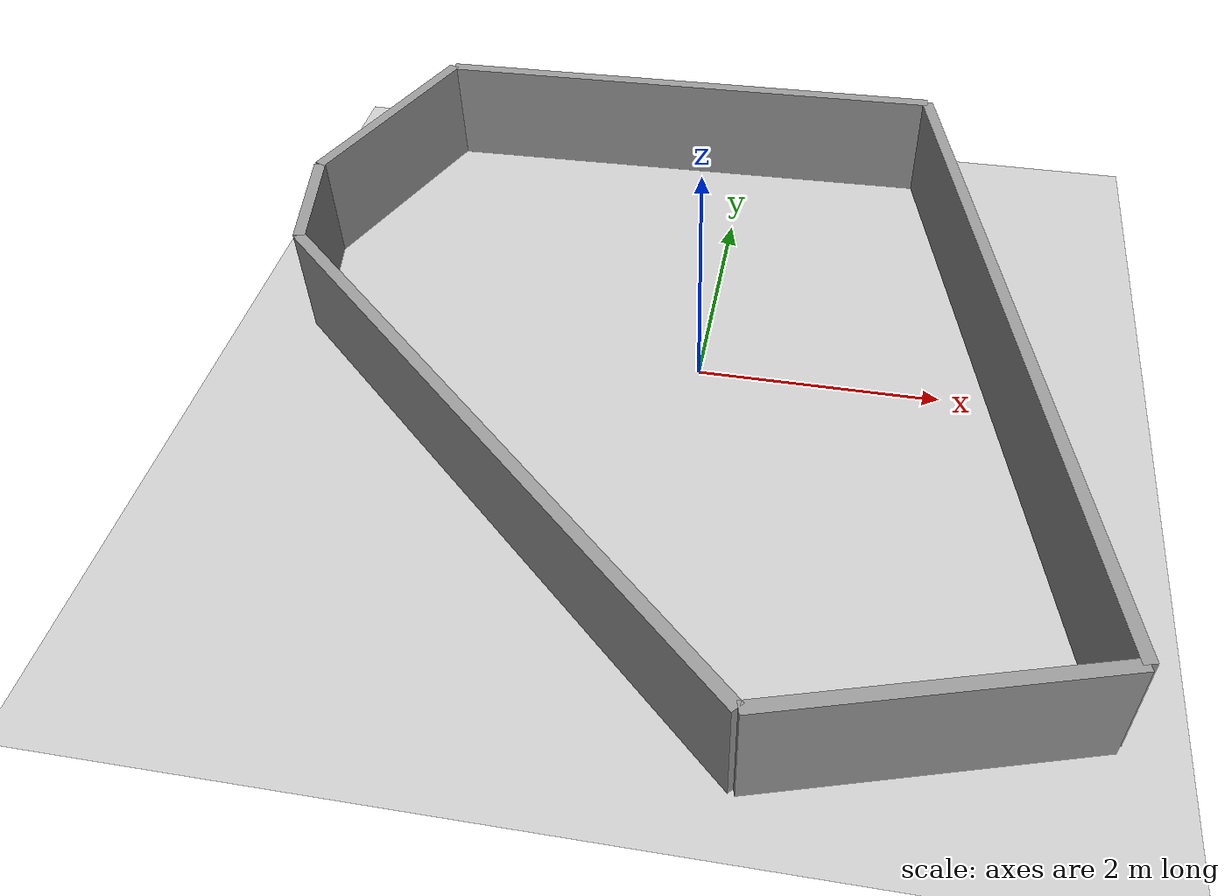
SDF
<sdf version='1.4'>
  <world name='default'>
    <light name='sun' type='directional'>
      <cast_shadows>1</cast_shadows>
      <pose>0 0 10 0 -0 0</pose>
      <diffuse>0.8 0.8 0.8 1</diffuse>
      <specular>0.2 0.2 0.2 1</specular>
      <attenuation>
        <range>1000</range>
        <constant>0.9</constant>
        <linear>0.01</linear>
        <quadratic>0.001</quadratic>
      </attenuation>
      <direction>-0.5 0.1 -0.9</direction>
    </light>
    <model name='ground_plane'>
      <static>1</static>
      <link name='link'>
        <collision name='collision'>
          <geometry>
            <plane>
              <normal>0 0 1</normal>
              <size>100 100</size>
            </plane>
          </geometry>
          <surface>
            <friction>
              <ode>
                <mu>100</mu>
                <mu2>50</mu2>
              </ode>
            </friction>
            <bounce/>
            <contact>
              <ode/>
            </contact>
          </surface>
          <max_contacts>10</max_contacts>
        </collision>
        <visual name='visual'>
          <cast_shadows>0</cast_shadows>
          <geometry>
            <plane>
              <normal>0 0 1</normal>
              <size>100 100</size>
            </plane>
          </geometry>
          <material>
            <script>
              <uri>file://media/materials/scripts/gazebo.material</uri>
              <name>Gazebo/Grey</name>
            </script>
          </material>
        </visual>
        <velocity_decay>
          <linear>0</linear>
          <angular>0</angular>
        </velocity_decay>
        <self_collide>0</self_collide>
        <kinematic>0</kinematic>
        <gravity>1</gravity>
      </link>
    </model>
    <physics type='ode'>
      <max_step_size>0.001</max_step_size>
      <real_time_factor>1</real_time_factor>
      <real_time_update_rate>1000</real_time_update_rate>
      <gravity>0 0 -9.8</gravity>
    </physics>
    <scene>
      <ambient>0.4 0.4 0.4 1</ambient>
      <background>0.7 0.7 0.7 1</background>
      <shadows>1</shadows>
    </scene>
    <spherical_coordinates>
      <surface_model>EARTH_WGS84</surface_model>
      <latitude_deg>0</latitude_deg>
      <longitude_deg>0</longitude_deg>
      <elevation>0</elevation>
      <heading_deg>0</heading_deg>
    </spherical_coordinates>
<model name="wall_1">
<pose>
-1.300000 -1.800000 0.450000 0 0 2.406153 </pose>
 <link name="link_1">
<inertial>
<mass>1</mass>
 <inertia>
<izz>1</izz>
 <ixx>1</ixx>
 <iyz>0</iyz>
 <ixz>0</ixz>
 <ixy>0</ixy>
 <iyy>1</iyy>
 </inertia>
 </inertial>
 <collision name="collision">
<geometry>
<box>
<size>
5.663921 0.100000 1 </size>
 </box>
 </geometry>
 <max_contacts>10</max_contacts>
 </collision>
 <visual name="visual">
<geometry>
<box>
<size>
5.663921 0.100000 1 </size>
 </box>
 </geometry>
 <material>
<script>
<uri>file://media/materials/scripts/gazebo.material</uri>
 <name>Gazebo/Grey</name>
 </script>
 </material>
 </visual>
 </link>
 <static>1</static>
 </model>

<model name="wall_2">
<pose>
-3.500000 0.600000 0.450000 0 0 1.768192 </pose>
 <link name="link_2">
<inertial>
<mass>1</mass>
 <inertia>
<izz>1</izz>
 <ixx>1</ixx>
 <iyz>0</iyz>
 <ixz>0</ixz>
 <ixy>0</ixy>
 <iyy>1</iyy>
 </inertia>
 </inertial>
 <collision name="collision">
<geometry>
<box>
<size>
1.019804 0.100000 1 </size>
 </box>
 </geometry>
 <max_contacts>10</max_contacts>
 </collision>
 <visual name="visual">
<geometry>
<box>
<size>
1.019804 0.100000 1 </size>
 </box>
 </geometry>
 <material>
<script>
<uri>file://media/materials/scripts/gazebo.material</uri>
 <name>Gazebo/Grey</name>
 </script>
 </material>
 </visual>
 </link>
 <static>1</static>
 </model>

<model name="wall_3">
<pose>
-3.250000 2.000000 0.450000 0 0 1.199905 </pose>
 <link name="link_3">
<inertial>
<mass>1</mass>
 <inertia>
<izz>1</izz>
 <ixx>1</ixx>
 <iyz>0</iyz>
 <ixz>0</ixz>
 <ixy>0</ixy>
 <iyy>1</iyy>
 </inertia>
 </inertial>
 <collision name="collision">
<geometry>
<box>
<size>
1.931321 0.100000 1 </size>
 </box>
 </geometry>
 <max_contacts>10</max_contacts>
 </collision>
 <visual name="visual">
<geometry>
<box>
<size>
1.931321 0.100000 1 </size>
 </box>
 </geometry>
 <material>
<script>
<uri>file://media/materials/scripts/gazebo.material</uri>
 <name>Gazebo/Grey</name>
 </script>
 </material>
 </visual>
 </link>
 <static>1</static>
 </model>

<model name="wall_4">
<pose>
-0.600000 2.950000 0.450000 0 0 0.021736 </pose>
 <link name="link_4">
<inertial>
<mass>1</mass>
 <inertia>
<izz>1</izz>
 <ixx>1</ixx>
 <iyz>0</iyz>
 <ixz>0</ixz>
 <ixy>0</ixy>
 <iyy>1</iyy>
 </inertia>
 </inertial>
 <collision name="collision">
<geometry>
<box>
<size>
4.601087 0.100000 1 </size>
 </box>
 </geometry>
 <max_contacts>10</max_contacts>
 </collision>
 <visual name="visual">
<geometry>
<box>
<size>
4.601087 0.100000 1 </size>
 </box>
 </geometry>
 <material>
<script>
<uri>file://media/materials/scripts/gazebo.material</uri>
 <name>Gazebo/Grey</name>
 </script>
 </material>
 </visual>
 </link>
 <static>1</static>
 </model>

<model name="wall_5">
<pose>
2.450000 0.000000 0.450000 0 0 -1.325818 </pose>
 <link name="link_5">
<inertial>
<mass>1</mass>
 <inertia>
<izz>1</izz>
 <ixx>1</ixx>
 <iyz>0</iyz>
 <ixz>0</ixz>
 <ixy>0</ixy>
 <iyy>1</iyy>
 </inertia>
 </inertial>
 <collision name="collision">
<geometry>
<box>
<size>
6.184658 0.100000 1 </size>
 </box>
 </geometry>
 <max_contacts>10</max_contacts>
 </collision>
 <visual name="visual">
<geometry>
<box>
<size>
6.184658 0.100000 1 </size>
 </box>
 </geometry>
 <material>
<script>
<uri>file://media/materials/scripts/gazebo.material</uri>
 <name>Gazebo/Grey</name>
 </script>
 </material>
 </visual>
 </link>
 <static>1</static>
 </model>

<model name="wall_6">
<pose>
2.000000 -3.350000 0.450000 0 0 -2.857799 </pose>
 <link name="link_6">
<inertial>
<mass>1</mass>
 <inertia>
<izz>1</izz>
 <ixx>1</ixx>
 <iyz>0</iyz>
 <ixz>0</ixz>
 <ixy>0</ixy>
 <iyy>1</iyy>
 </inertia>
 </inertial>
 <collision name="collision">
<geometry>
<box>
<size>
2.500000 0.100000 1 </size>
 </box>
 </geometry>
 <max_contacts>10</max_contacts>
 </collision>
 <visual name="visual">
<geometry>
<box>
<size>
2.500000 0.100000 1 </size>
 </box>
 </geometry>
 <material>
<script>
<uri>file://media/materials/scripts/gazebo.material</uri>
 <name>Gazebo/Grey</name>
 </script>
 </material>
 </visual>
 </link>
 <static>1</static>
 </model>

<model name="lightrgbfff_a">
<pose>
0.360000 -1.590000 -0.200000 0 0 0 </pose>
 <link name="link_7">
<inertial>
<mass>1</mass>
 <inertia>
<izz>1</izz>
 <ixx>1</ixx>
 <iyz>0</iyz>
 <ixz>0</ixz>
 <ixy>0</ixy>
 <iyy>1</iyy>
 </inertia>
 </inertial>
 <collision name="collision">
<geometry>
<cylinder>
<radius>0.200000</radius>
 <length>0.100000</length>
 </cylinder>
 </geometry>
 <max_contacts>10</max_contacts>
 </collision>
 <visual name="visual">
<geometry>
<cylinder>
<radius>0.200000</radius>
 <length>0.100000</length>
 </cylinder>
 </geometry>
 <material>
<script>
<uri>file://media/materials/scripts/gazebo.material</uri>
 <name>Gazebo/Grey</name>
 </script>
 </material>
 </visual>
 </link>
 <static>1</static>
 </model>

    <gui fullscreen='0'>
      <camera name='user_camera'>
        <pose>5 -5 2 0 0.275643 2.35619</pose>
        <view_controller>orbit</view_controller>
      </camera>
    </gui>
  </world>
</sdf>
